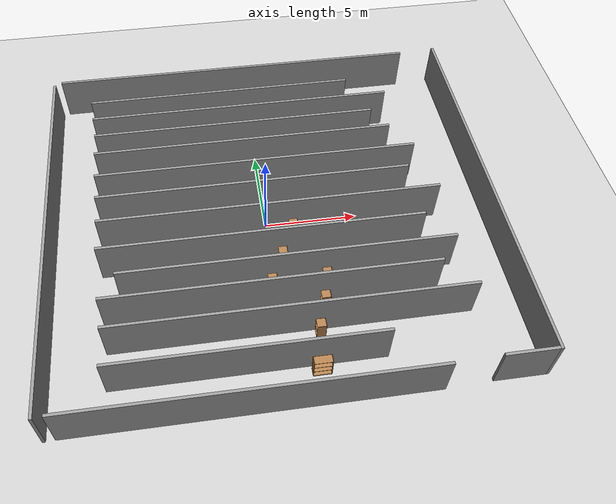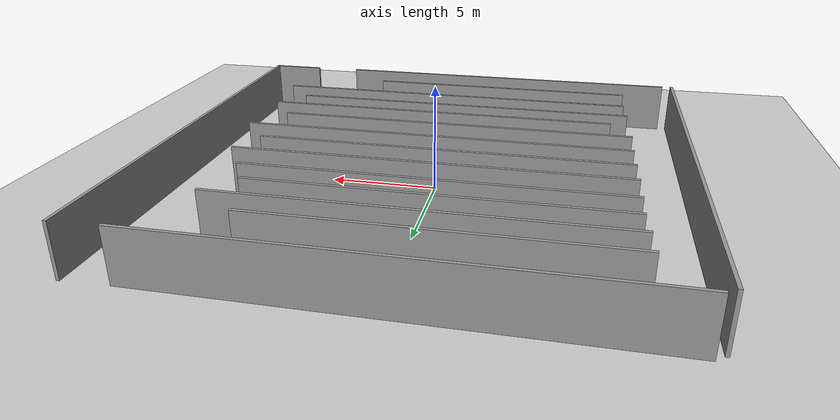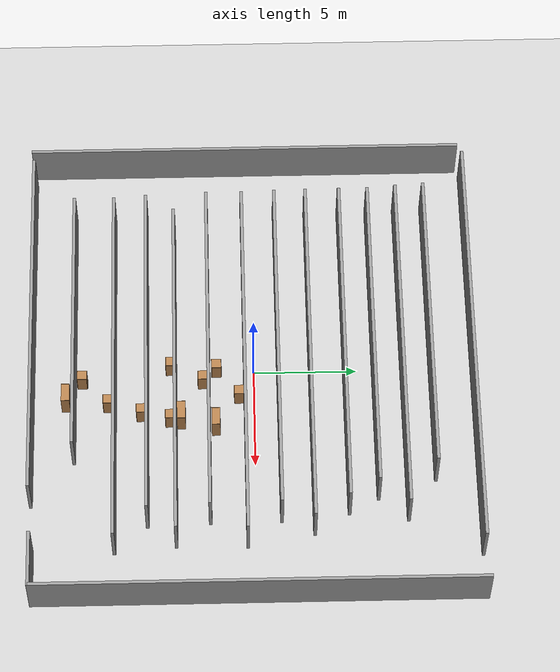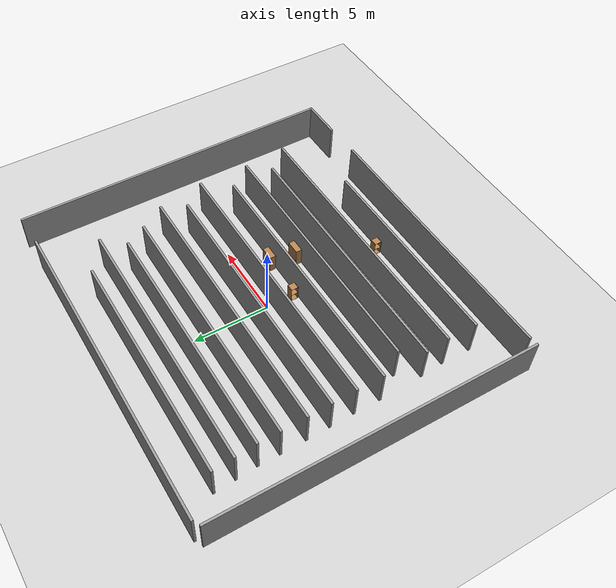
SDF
<sdf version="1.6">
 <world name="default">
  <model name="ground_plane">
   <static>1</static>
   <link name="link">
    <collision name="collision">
     <geometry><plane><normal>0 0 1</normal><size>100 100</size></plane></geometry>
     <surface><friction><ode><mu>100</mu><mu2>50</mu2></ode></friction></surface>
    </collision>
    <visual name="visual">
     <cast_shadows>0</cast_shadows>
     <geometry><plane><normal>0 0 1</normal><size>100 100</size></plane></geometry>
     <material>
      <script><uri>file://media/materials/scripts/gazebo.material</uri><name>Gazebo/Grey</name></script>
     </material>
    </visual>
   </link>
  </model>
  <model name="room16">
   <pose>0.320138 -0.0112 0 0 -0 0</pose>
   <link name="Wall_0">
    <collision name="Wall_0_Collision">
     <geometry><box><size>21 0.15 2.5</size></box></geometry>
     <pose>0 0 1.25 0 -0 0</pose>
    </collision>
    <visual name="Wall_0_Visual">
     <pose>0 0 1.25 0 -0 0</pose>
     <geometry><box><size>21 0.15 2.5</size></box></geometry>
     <material>
      <script><uri>file://media/materials/scripts/gazebo.material</uri><name>Gazebo/Grey</name></script>
      <ambient>1 1 1 1</ambient>
     </material>
     <meta><layer>0</layer></meta>
    </visual>
    <pose>-0.858692 10.6507 0 0 -0 0</pose>
   </link>
   <link name="Wall_11">
    <collision name="Wall_11_Collision">
     <geometry><box><size>17.25 0.15 2.5</size></box></geometry>
     <pose>0 0 1.25 0 -0 0</pose>
    </collision>
    <visual name="Wall_11_Visual">
     <pose>0 0 1.25 0 -0 0</pose>
     <geometry><box><size>17.25 0.15 2.5</size></box></geometry>
     <material>
      <script><uri>file://media/materials/scripts/gazebo.material</uri><name>Gazebo/Grey</name></script>
      <ambient>1 1 1 1</ambient>
     </material>
     <meta><layer>0</layer></meta>
    </visual>
    <pose>-0.822582 7.21897 0 0 -0 0</pose>
   </link>
   <link name="Wall_13">
    <collision name="Wall_13_Collision">
     <geometry><box><size>16 0.15 2.5</size></box></geometry>
     <pose>0 0 1.25 0 -0 0</pose>
    </collision>
    <visual name="Wall_13_Visual">
     <pose>0 0 1.25 0 -0 0</pose>
     <geometry><box><size>16 0.15 2.5</size></box></geometry>
     <material>
      <script><uri>file://media/materials/scripts/gazebo.material</uri><name>Gazebo/Grey</name></script>
      <ambient>1 1 1 1</ambient>
     </material>
     <meta><layer>0</layer></meta>
    </visual>
    <pose>-1.33193 5.83113 0 0 -0 0</pose>
   </link>
   <link name="Wall_16">
    <collision name="Wall_16_Collision">
     <geometry><box><size>16.75 0.15 2.5</size></box></geometry>
     <pose>0 0 1.25 0 -0 0</pose>
    </collision>
    <visual name="Wall_16_Visual">
     <pose>0 0 1.25 0 -0 0</pose>
     <geometry><box><size>16.75 0.15 2.5</size></box></geometry>
     <material>
      <script><uri>file://media/materials/scripts/gazebo.material</uri><name>Gazebo/Grey</name></script>
      <ambient>1 1 1 1</ambient>
     </material>
     <meta><layer>0</layer></meta>
    </visual>
    <pose>-0.956929 4.42016 0 0 -0 0</pose>
   </link>
   <link name="Wall_18">
    <collision name="Wall_18_Collision">
     <geometry><box><size>17.75 0.15 2.5</size></box></geometry>
     <pose>0 0 1.25 0 -0 0</pose>
    </collision>
    <visual name="Wall_18_Visual">
     <pose>0 0 1.25 0 -0 0</pose>
     <geometry><box><size>17.75 0.15 2.5</size></box></geometry>
     <material>
      <script><uri>file://media/materials/scripts/gazebo.material</uri><name>Gazebo/Grey</name></script>
      <ambient>1 1 1 1</ambient>
     </material>
     <meta><layer>0</layer></meta>
    </visual>
    <pose>-0.433798 2.75476 0 0 -0 0</pose>
   </link>
   <link name="Wall_2">
    <collision name="Wall_2_Collision">
     <geometry><box><size>21.25 0.15 2.5</size></box></geometry>
     <pose>0 0 1.25 0 -0 0</pose>
    </collision>
    <visual name="Wall_2_Visual">
     <pose>0 0 1.25 0 -0 0</pose>
     <geometry><box><size>21.25 0.15 2.5</size></box></geometry>
     <material>
      <script><uri>file://media/materials/scripts/gazebo.material</uri><name>Gazebo/Grey</name></script>
      <ambient>1 1 1 1</ambient>
     </material>
     <meta><layer>0</layer></meta>
    </visual>
    <pose>-11.755 -0.18527 0 0 -0 -1.5708</pose>
   </link>
   <link name="Wall_20">
    <collision name="Wall_20_Collision">
     <geometry><box><size>17 0.15 2.5</size></box></geometry>
     <pose>0 0 1.25 0 -0 0</pose>
    </collision>
    <visual name="Wall_20_Visual">
     <pose>0 0 1.25 0 -0 0</pose>
     <geometry><box><size>17 0.15 2.5</size></box></geometry>
     <material>
      <script><uri>file://media/materials/scripts/gazebo.material</uri><name>Gazebo/Grey</name></script>
      <ambient>1 1 1 1</ambient>
     </material>
     <meta><layer>0</layer></meta>
    </visual>
    <pose>-0.762537 1.20501 0 0 -0 0</pose>
   </link>
   <link name="Wall_22">
    <collision name="Wall_22_Collision">
     <geometry><box><size>18.25 0.15 2.5</size></box></geometry>
     <pose>0 0 1.25 0 -0 0</pose>
    </collision>
    <visual name="Wall_22_Visual">
     <pose>0 0 1.25 0 -0 0</pose>
     <geometry><box><size>18.25 0.15 2.5</size></box></geometry>
     <material>
      <script><uri>file://media/materials/scripts/gazebo.material</uri><name>Gazebo/Grey</name></script>
      <ambient>1 1 1 1</ambient>
     </material>
     <meta><layer>0</layer></meta>
    </visual>
    <pose>-0.091276 -0.414133 0 0 -0 0</pose>
   </link>
   <link name="Wall_25">
    <collision name="Wall_25_Collision">
     <geometry><box><size>17 0.15 2.5</size></box></geometry>
     <pose>0 0 1.25 0 -0 0</pose>
    </collision>
    <visual name="Wall_25_Visual">
     <pose>0 0 1.25 0 -0 0</pose>
     <geometry><box><size>17 0.15 2.5</size></box></geometry>
     <material>
      <script><uri>file://media/materials/scripts/gazebo.material</uri><name>Gazebo/Grey</name></script>
      <ambient>1 1 1 1</ambient>
     </material>
     <meta><layer>0</layer></meta>
    </visual>
    <pose>-0.716276 -2.17206 0 0 -0 0</pose>
   </link>
   <link name="Wall_27">
    <collision name="Wall_27_Collision">
     <geometry><box><size>17.25 0.15 2.5</size></box></geometry>
     <pose>0 0 1.25 0 -0 0</pose>
    </collision>
    <visual name="Wall_27_Visual">
     <pose>0 0 1.25 0 -0 0</pose>
     <geometry><box><size>17.25 0.15 2.5</size></box></geometry>
     <material>
      <script><uri>file://media/materials/scripts/gazebo.material</uri><name>Gazebo/Grey</name></script>
      <ambient>1 1 1 1</ambient>
     </material>
     <meta><layer>0</layer></meta>
    </visual>
    <pose>0.357079 -3.7912 0 0 -0 0</pose>
   </link>
   <link name="Wall_29">
    <collision name="Wall_29_Collision">
     <geometry><box><size>17 0.15 2.5</size></box></geometry>
     <pose>0 0 1.25 0 -0 0</pose>
    </collision>
    <visual name="Wall_29_Visual">
     <pose>0 0 1.25 0 -0 0</pose>
     <geometry><box><size>17 0.15 2.5</size></box></geometry>
     <material>
      <script><uri>file://media/materials/scripts/gazebo.material</uri><name>Gazebo/Grey</name></script>
      <ambient>1 1 1 1</ambient>
     </material>
     <meta><layer>0</layer></meta>
    </visual>
    <pose>-0.600623 -5.15591 0 0 -0 0</pose>
   </link>
   <link name="Wall_31">
    <collision name="Wall_31_Collision">
     <geometry><box><size>18.25 0.15 2.5</size></box></geometry>
     <pose>0 0 1.25 0 -0 0</pose>
    </collision>
    <visual name="Wall_31_Visual">
     <pose>0 0 1.25 0 -0 0</pose>
     <geometry><box><size>18.25 0.15 2.5</size></box></geometry>
     <material>
      <script><uri>file://media/materials/scripts/gazebo.material</uri><name>Gazebo/Grey</name></script>
      <ambient>1 1 1 1</ambient>
     </material>
     <meta><layer>0</layer></meta>
    </visual>
    <pose>0.14003 -6.72879 0 0 -0 0</pose>
   </link>
   <link name="Wall_33">
    <collision name="Wall_33_Collision">
     <geometry><box><size>13.5 0.15 2.5</size></box></geometry>
     <pose>0 0 1.25 0 -0 0</pose>
    </collision>
    <visual name="Wall_33_Visual">
     <pose>0 0 1.25 0 -0 0</pose>
     <geometry><box><size>13.5 0.15 2.5</size></box></geometry>
     <material>
      <script><uri>file://media/materials/scripts/gazebo.material</uri><name>Gazebo/Grey</name></script>
      <ambient>1 1 1 1</ambient>
     </material>
     <meta><layer>0</layer></meta>
    </visual>
    <pose>-2.2581 -8.67176 0 0 -0 0</pose>
   </link>
   <link name="Wall_4">
    <collision name="Wall_4_Collision">
     <geometry><box><size>18 0.15 2.5</size></box></geometry>
     <pose>0 0 1.25 0 -0 0</pose>
    </collision>
    <visual name="Wall_4_Visual">
     <pose>0 0 1.25 0 -0 0</pose>
     <geometry><box><size>18 0.15 2.5</size></box></geometry>
     <material>
      <script><uri>file://media/materials/scripts/gazebo.material</uri><name>Gazebo/Grey</name></script>
      <ambient>1 1 1 1</ambient>
     </material>
     <meta><layer>0</layer></meta>
    </visual>
    <pose>-2.25177 -10.7073 0 0 -0 0</pose>
   </link>
   <link name="Wall_6">
    <collision name="Wall_6_Collision">
     <geometry><box><size>2.75 0.15 2.5</size></box></geometry>
     <pose>0 0 1.25 0 -0 0</pose>
    </collision>
    <visual name="Wall_6_Visual">
     <pose>0 0 1.25 0 -0 0</pose>
     <geometry><box><size>2.75 0.15 2.5</size></box></geometry>
     <material>
      <script><uri>file://media/materials/scripts/gazebo.material</uri><name>Gazebo/Grey</name></script>
      <ambient>1 1 1 1</ambient>
     </material>
     <meta><layer>0</layer></meta>
    </visual>
    <pose>10.455 -10.6147 0 0 -0 0</pose>
   </link>
   <link name="Wall_7">
    <collision name="Wall_7_Collision">
     <geometry><box><size>21.5 0.15 2.5</size></box></geometry>
     <pose>0 0 1.25 0 -0 0</pose>
    </collision>
    <visual name="Wall_7_Visual">
     <pose>0 0 1.25 0 -0 0</pose>
     <geometry><box><size>21.5 0.15 2.5</size></box></geometry>
     <material>
      <script><uri>file://media/materials/scripts/gazebo.material</uri><name>Gazebo/Grey</name></script>
      <ambient>1 1 1 1</ambient>
     </material>
     <meta><layer>0</layer></meta>
    </visual>
    <pose>11.755 0.060269 0 0 -0 1.5708</pose>
   </link>
   <link name="Wall_9">
    <collision name="Wall_9_Collision">
     <geometry><box><size>15.25 0.15 2.5</size></box></geometry>
     <pose>0 0 1.25 0 -0 0</pose>
    </collision>
    <visual name="Wall_9_Visual">
     <pose>0 0 1.25 0 -0 0</pose>
     <geometry><box><size>15.25 0.15 2.5</size></box></geometry>
     <material>
      <script><uri>file://media/materials/scripts/gazebo.material</uri><name>Gazebo/Grey</name></script>
      <ambient>1 1 1 1</ambient>
     </material>
     <meta><layer>0</layer></meta>
    </visual>
    <pose>-1.9151 8.6068 0 0 -0 0</pose>
   </link>
   <static>1</static>
  </model>
  <model name="cabinet_21">
   <static>1</static>
   <link name="cabinet_bottom_plate">
    <inertial>
     <pose>0 0 -1 0 -0 0</pose>
     <inertia><ixx>2.05</ixx><ixy>0</ixy><ixz>0</ixz><iyy>2.05</iyy><iyz>0</iyz><izz>2.05</izz></inertia>
     <mass>25</mass>
    </inertial>
    <collision name="cabinet_bottom_plate_geom">
     <pose>0 0 0.01 0 -0 0</pose>
     <geometry><box><size>0.45 0.45 0.02</size></box></geometry>
    </collision>
    <visual name="cabinet_bottom_plate_geom_visual">
     <pose>0 0 0.01 0 -0 0</pose>
     <geometry><box><size>0.45 0.45 0.02</size></box></geometry>
     <material>
      <script><uri>file://media/materials/scripts/gazebo.material</uri><name>Gazebo/Wood</name></script>
     </material>
    </visual>
    <collision name="cabinet_bottom_plate_geom_cabinet_back_plate">
     <pose>0.235 0 0.51 0 -0 0</pose>
     <geometry><box><size>0.02 0.45 1.02</size></box></geometry>
    </collision>
    <visual name="cabinet_bottom_plate_geom_cabinet_back_plate_visual">
     <pose>0.235 0 0.51 0 -0 0</pose>
     <geometry><box><size>0.02 0.45 1.02</size></box></geometry>
     <material>
      <script><uri>file://media/materials/scripts/gazebo.material</uri><name>Gazebo/Wood</name></script>
     </material>
    </visual>
    <collision name="cabinet_bottom_plate_geom_cabinet_left_plate">
     <pose>0 0.235 0.51 0 -0 0</pose>
     <geometry><box><size>0.45 0.02 1.02</size></box></geometry>
    </collision>
    <visual name="cabinet_bottom_plate_geom_cabinet_left_plate_visual">
     <pose>0 0.235 0.51 0 -0 0</pose>
     <geometry><box><size>0.45 0.02 1.02</size></box></geometry>
     <material>
      <script><uri>file://media/materials/scripts/gazebo.material</uri><name>Gazebo/Wood</name></script>
     </material>
    </visual>
    <collision name="cabinet_bottom_plate_geom_cabinet_middle_plate">
     <pose>0 0 0.51 0 -0 0</pose>
     <geometry><box><size>0.45 0.45 0.02</size></box></geometry>
    </collision>
    <visual name="cabinet_bottom_plate_geom_cabinet_middle_plate_visual">
     <pose>0 0 0.51 0 -0 0</pose>
     <geometry><box><size>0.45 0.45 0.02</size></box></geometry>
     <material>
      <script><uri>file://media/materials/scripts/gazebo.material</uri><name>Gazebo/Wood</name></script>
     </material>
    </visual>
    <collision name="cabinet_bottom_plate_geom_cabinet_right_plate">
     <pose>0 -0.235 0.51 0 -0 0</pose>
     <geometry><box><size>0.45 0.02 1.02</size></box></geometry>
    </collision>
    <visual name="cabinet_bottom_plate_geom_cabinet_right_plate_visual">
     <pose>0 -0.235 0.51 0 -0 0</pose>
     <geometry><box><size>0.45 0.02 1.02</size></box></geometry>
     <material>
      <script><uri>file://media/materials/scripts/gazebo.material</uri><name>Gazebo/Wood</name></script>
     </material>
    </visual>
    <collision name="cabinet_bottom_plate_geom_cabinet_top_plate">
     <pose>0 0 1.01 0 -0 0</pose>
     <geometry><box><size>0.45 0.45 0.02</size></box></geometry>
    </collision>
    <visual name="cabinet_bottom_plate_geom_cabinet_top_plate_visual">
     <pose>0 0 1.01 0 -0 0</pose>
     <geometry><box><size>0.45 0.45 0.02</size></box></geometry>
     <material>
      <script><uri>file://media/materials/scripts/gazebo.material</uri><name>Gazebo/Wood</name></script>
     </material>
    </visual>
   </link>
   <pose>-0.043674 -1.79818 0 0 -0 0</pose>
  </model>
  <model name="cabinet_22">
   <static>1</static>
   <link name="cabinet_bottom_plate">
    <inertial>
     <pose>0 0 -1 0 -0 0</pose>
     <inertia><ixx>2.05</ixx><ixy>0</ixy><ixz>0</ixz><iyy>2.05</iyy><iyz>0</iyz><izz>2.05</izz></inertia>
     <mass>25</mass>
    </inertial>
    <collision name="cabinet_bottom_plate_geom">
     <pose>0 0 0.01 0 -0 0</pose>
     <geometry><box><size>0.45 0.45 0.02</size></box></geometry>
    </collision>
    <visual name="cabinet_bottom_plate_geom_visual">
     <pose>0 0 0.01 0 -0 0</pose>
     <geometry><box><size>0.45 0.45 0.02</size></box></geometry>
     <material>
      <script><uri>file://media/materials/scripts/gazebo.material</uri><name>Gazebo/Wood</name></script>
     </material>
    </visual>
    <collision name="cabinet_bottom_plate_geom_cabinet_back_plate">
     <pose>0.235 0 0.51 0 -0 0</pose>
     <geometry><box><size>0.02 0.45 1.02</size></box></geometry>
    </collision>
    <visual name="cabinet_bottom_plate_geom_cabinet_back_plate_visual">
     <pose>0.235 0 0.51 0 -0 0</pose>
     <geometry><box><size>0.02 0.45 1.02</size></box></geometry>
     <material>
      <script><uri>file://media/materials/scripts/gazebo.material</uri><name>Gazebo/Wood</name></script>
     </material>
    </visual>
    <collision name="cabinet_bottom_plate_geom_cabinet_left_plate">
     <pose>0 0.235 0.51 0 -0 0</pose>
     <geometry><box><size>0.45 0.02 1.02</size></box></geometry>
    </collision>
    <visual name="cabinet_bottom_plate_geom_cabinet_left_plate_visual">
     <pose>0 0.235 0.51 0 -0 0</pose>
     <geometry><box><size>0.45 0.02 1.02</size></box></geometry>
     <material>
      <script><uri>file://media/materials/scripts/gazebo.material</uri><name>Gazebo/Wood</name></script>
     </material>
    </visual>
    <collision name="cabinet_bottom_plate_geom_cabinet_middle_plate">
     <pose>0 0 0.51 0 -0 0</pose>
     <geometry><box><size>0.45 0.45 0.02</size></box></geometry>
    </collision>
    <visual name="cabinet_bottom_plate_geom_cabinet_middle_plate_visual">
     <pose>0 0 0.51 0 -0 0</pose>
     <geometry><box><size>0.45 0.45 0.02</size></box></geometry>
     <material>
      <script><uri>file://media/materials/scripts/gazebo.material</uri><name>Gazebo/Wood</name></script>
     </material>
    </visual>
    <collision name="cabinet_bottom_plate_geom_cabinet_right_plate">
     <pose>0 -0.235 0.51 0 -0 0</pose>
     <geometry><box><size>0.45 0.02 1.02</size></box></geometry>
    </collision>
    <visual name="cabinet_bottom_plate_geom_cabinet_right_plate_visual">
     <pose>0 -0.235 0.51 0 -0 0</pose>
     <geometry><box><size>0.45 0.02 1.02</size></box></geometry>
     <material>
      <script><uri>file://media/materials/scripts/gazebo.material</uri><name>Gazebo/Wood</name></script>
     </material>
    </visual>
    <collision name="cabinet_bottom_plate_geom_cabinet_top_plate">
     <pose>0 0 1.01 0 -0 0</pose>
     <geometry><box><size>0.45 0.45 0.02</size></box></geometry>
    </collision>
    <visual name="cabinet_bottom_plate_geom_cabinet_top_plate_visual">
     <pose>0 0 1.01 0 -0 0</pose>
     <geometry><box><size>0.45 0.45 0.02</size></box></geometry>
     <material>
      <script><uri>file://media/materials/scripts/gazebo.material</uri><name>Gazebo/Wood</name></script>
     </material>
    </visual>
   </link>
   <pose>1.39877 -0.713935 0 0 -0 0</pose>
  </model>
  <model name="bookshelf_24">
   <static>1</static>
   <link name="link">
    <inertial><mass>1</mass></inertial>
    <collision name="back">
     <pose>0 0.005 0.6 0 -0 0</pose>
     <geometry><box><size>0.9 0.01 1.2</size></box></geometry>
    </collision>
    <visual name="visual1">
     <pose>0 0.005 0.6 0 -0 0</pose>
     <geometry><box><size>0.9 0.01 1.2</size></box></geometry>
     <material>
      <script><uri>file://media/materials/scripts/gazebo.material</uri><name>Gazebo/Wood</name></script>
     </material>
    </visual>
    <collision name="left_side">
     <pose>0.45 -0.195 0.6 0 -0 0</pose>
     <geometry><box><size>0.02 0.4 1.2</size></box></geometry>
    </collision>
    <visual name="visual2">
     <pose>0.45 -0.195 0.6 0 -0 0</pose>
     <geometry><box><size>0.02 0.4 1.2</size></box></geometry>
     <material>
      <script><uri>file://media/materials/scripts/gazebo.material</uri><name>Gazebo/Wood</name></script>
     </material>
    </visual>
    <collision name="right_side">
     <pose>-0.45 -0.195 0.6 0 -0 0</pose>
     <geometry><box><size>0.02 0.4 1.2</size></box></geometry>
    </collision>
    <visual name="visual3">
     <pose>-0.45 -0.195 0.6 0 -0 0</pose>
     <geometry><box><size>0.02 0.4 1.2</size></box></geometry>
     <material>
      <script><uri>file://media/materials/scripts/gazebo.material</uri><name>Gazebo/Wood</name></script>
     </material>
    </visual>
    <collision name="bottom">
     <pose>0 -0.195 0.03 0 -0 0</pose>
     <geometry><box><size>0.88 0.4 0.06</size></box></geometry>
    </collision>
    <visual name="visual4">
     <pose>0 -0.195 0.03 0 -0 0</pose>
     <geometry><box><size>0.88 0.4 0.06</size></box></geometry>
     <material>
      <script><uri>file://media/materials/scripts/gazebo.material</uri><name>Gazebo/Wood</name></script>
     </material>
    </visual>
    <collision name="top">
     <pose>0 -0.195 1.19 0 -0 0</pose>
     <geometry><box><size>0.88 0.4 0.02</size></box></geometry>
    </collision>
    <visual name="visual5">
     <pose>0 -0.195 1.19 0 -0 0</pose>
     <geometry><box><size>0.88 0.4 0.02</size></box></geometry>
     <material>
      <script><uri>file://media/materials/scripts/gazebo.material</uri><name>Gazebo/Wood</name></script>
     </material>
    </visual>
    <collision name="low_shelf">
     <pose>0 -0.195 0.43 0 -0 0</pose>
     <geometry><box><size>0.88 0.4 0.02</size></box></geometry>
    </collision>
    <visual name="visual6">
     <pose>0 -0.195 0.43 0 -0 0</pose>
     <geometry><box><size>0.88 0.4 0.02</size></box></geometry>
     <material>
      <script><uri>file://media/materials/scripts/gazebo.material</uri><name>Gazebo/Wood</name></script>
     </material>
    </visual>
    <collision name="high_shelf">
     <pose>0 -0.195 0.8 0 -0 0</pose>
     <geometry><box><size>0.88 0.4 0.02</size></box></geometry>
    </collision>
    <visual name="visual7">
     <pose>0 -0.195 0.8 0 -0 0</pose>
     <geometry><box><size>0.88 0.4 0.02</size></box></geometry>
     <material>
      <script><uri>file://media/materials/scripts/gazebo.material</uri><name>Gazebo/Wood</name></script>
     </material>
    </visual>
   </link>
   <pose>2.90995 -1.65645 0 0 -0 0</pose>
  </model>
  <model name="cabinet_27">
   <static>1</static>
   <link name="cabinet_bottom_plate">
    <inertial>
     <pose>0 0 -1 0 -0 0</pose>
     <inertia><ixx>2.05</ixx><ixy>0</ixy><ixz>0</ixz><iyy>2.05</iyy><iyz>0</iyz><izz>2.05</izz></inertia>
     <mass>25</mass>
    </inertial>
    <collision name="cabinet_bottom_plate_geom">
     <pose>0 0 0.01 0 -0 0</pose>
     <geometry><box><size>0.45 0.45 0.02</size></box></geometry>
    </collision>
    <visual name="cabinet_bottom_plate_geom_visual">
     <pose>0 0 0.01 0 -0 0</pose>
     <geometry><box><size>0.45 0.45 0.02</size></box></geometry>
     <material>
      <script><uri>file://media/materials/scripts/gazebo.material</uri><name>Gazebo/Wood</name></script>
     </material>
    </visual>
    <collision name="cabinet_bottom_plate_geom_cabinet_back_plate">
     <pose>0.235 0 0.51 0 -0 0</pose>
     <geometry><box><size>0.02 0.45 1.02</size></box></geometry>
    </collision>
    <visual name="cabinet_bottom_plate_geom_cabinet_back_plate_visual">
     <pose>0.235 0 0.51 0 -0 0</pose>
     <geometry><box><size>0.02 0.45 1.02</size></box></geometry>
     <material>
      <script><uri>file://media/materials/scripts/gazebo.material</uri><name>Gazebo/Wood</name></script>
     </material>
    </visual>
    <collision name="cabinet_bottom_plate_geom_cabinet_left_plate">
     <pose>0 0.235 0.51 0 -0 0</pose>
     <geometry><box><size>0.45 0.02 1.02</size></box></geometry>
    </collision>
    <visual name="cabinet_bottom_plate_geom_cabinet_left_plate_visual">
     <pose>0 0.235 0.51 0 -0 0</pose>
     <geometry><box><size>0.45 0.02 1.02</size></box></geometry>
     <material>
      <script><uri>file://media/materials/scripts/gazebo.material</uri><name>Gazebo/Wood</name></script>
     </material>
    </visual>
    <collision name="cabinet_bottom_plate_geom_cabinet_middle_plate">
     <pose>0 0 0.51 0 -0 0</pose>
     <geometry><box><size>0.45 0.45 0.02</size></box></geometry>
    </collision>
    <visual name="cabinet_bottom_plate_geom_cabinet_middle_plate_visual">
     <pose>0 0 0.51 0 -0 0</pose>
     <geometry><box><size>0.45 0.45 0.02</size></box></geometry>
     <material>
      <script><uri>file://media/materials/scripts/gazebo.material</uri><name>Gazebo/Wood</name></script>
     </material>
    </visual>
    <collision name="cabinet_bottom_plate_geom_cabinet_right_plate">
     <pose>0 -0.235 0.51 0 -0 0</pose>
     <geometry><box><size>0.45 0.02 1.02</size></box></geometry>
    </collision>
    <visual name="cabinet_bottom_plate_geom_cabinet_right_plate_visual">
     <pose>0 -0.235 0.51 0 -0 0</pose>
     <geometry><box><size>0.45 0.02 1.02</size></box></geometry>
     <material>
      <script><uri>file://media/materials/scripts/gazebo.material</uri><name>Gazebo/Wood</name></script>
     </material>
    </visual>
    <collision name="cabinet_bottom_plate_geom_cabinet_top_plate">
     <pose>0 0 1.01 0 -0 0</pose>
     <geometry><box><size>0.45 0.45 0.02</size></box></geometry>
    </collision>
    <visual name="cabinet_bottom_plate_geom_cabinet_top_plate_visual">
     <pose>0 0 1.01 0 -0 0</pose>
     <geometry><box><size>0.45 0.45 0.02</size></box></geometry>
     <material>
      <script><uri>file://media/materials/scripts/gazebo.material</uri><name>Gazebo/Wood</name></script>
     </material>
    </visual>
   </link>
   <pose>0.573632 -2.46662 0 0 -0 0</pose>
  </model>
  <model name="bookshelf_27">
   <static>1</static>
   <link name="link">
    <inertial><mass>1</mass></inertial>
    <collision name="back">
     <pose>0 0.005 0.6 0 -0 0</pose>
     <geometry><box><size>0.9 0.01 1.2</size></box></geometry>
    </collision>
    <visual name="visual1">
     <pose>0 0.005 0.6 0 -0 0</pose>
     <geometry><box><size>0.9 0.01 1.2</size></box></geometry>
     <material>
      <script><uri>file://media/materials/scripts/gazebo.material</uri><name>Gazebo/Wood</name></script>
     </material>
    </visual>
    <collision name="left_side">
     <pose>0.45 -0.195 0.6 0 -0 0</pose>
     <geometry><box><size>0.02 0.4 1.2</size></box></geometry>
    </collision>
    <visual name="visual2">
     <pose>0.45 -0.195 0.6 0 -0 0</pose>
     <geometry><box><size>0.02 0.4 1.2</size></box></geometry>
     <material>
      <script><uri>file://media/materials/scripts/gazebo.material</uri><name>Gazebo/Wood</name></script>
     </material>
    </visual>
    <collision name="right_side">
     <pose>-0.45 -0.195 0.6 0 -0 0</pose>
     <geometry><box><size>0.02 0.4 1.2</size></box></geometry>
    </collision>
    <visual name="visual3">
     <pose>-0.45 -0.195 0.6 0 -0 0</pose>
     <geometry><box><size>0.02 0.4 1.2</size></box></geometry>
     <material>
      <script><uri>file://media/materials/scripts/gazebo.material</uri><name>Gazebo/Wood</name></script>
     </material>
    </visual>
    <collision name="bottom">
     <pose>0 -0.195 0.03 0 -0 0</pose>
     <geometry><box><size>0.88 0.4 0.06</size></box></geometry>
    </collision>
    <visual name="visual4">
     <pose>0 -0.195 0.03 0 -0 0</pose>
     <geometry><box><size>0.88 0.4 0.06</size></box></geometry>
     <material>
      <script><uri>file://media/materials/scripts/gazebo.material</uri><name>Gazebo/Wood</name></script>
     </material>
    </visual>
    <collision name="top">
     <pose>0 -0.195 1.19 0 -0 0</pose>
     <geometry><box><size>0.88 0.4 0.02</size></box></geometry>
    </collision>
    <visual name="visual5">
     <pose>0 -0.195 1.19 0 -0 0</pose>
     <geometry><box><size>0.88 0.4 0.02</size></box></geometry>
     <material>
      <script><uri>file://media/materials/scripts/gazebo.material</uri><name>Gazebo/Wood</name></script>
     </material>
    </visual>
    <collision name="low_shelf">
     <pose>0 -0.195 0.43 0 -0 0</pose>
     <geometry><box><size>0.88 0.4 0.02</size></box></geometry>
    </collision>
    <visual name="visual6">
     <pose>0 -0.195 0.43 0 -0 0</pose>
     <geometry><box><size>0.88 0.4 0.02</size></box></geometry>
     <material>
      <script><uri>file://media/materials/scripts/gazebo.material</uri><name>Gazebo/Wood</name></script>
     </material>
    </visual>
    <collision name="high_shelf">
     <pose>0 -0.195 0.8 0 -0 0</pose>
     <geometry><box><size>0.88 0.4 0.02</size></box></geometry>
    </collision>
    <visual name="visual7">
     <pose>0 -0.195 0.8 0 -0 0</pose>
     <geometry><box><size>0.88 0.4 0.02</size></box></geometry>
     <material>
      <script><uri>file://media/materials/scripts/gazebo.material</uri><name>Gazebo/Wood</name></script>
     </material>
    </visual>
   </link>
   <pose>2.53301 -3.32443 0 0 -0 0</pose>
  </model>
  <model name="cabinet_29">
   <static>1</static>
   <link name="cabinet_bottom_plate">
    <inertial>
     <pose>0 0 -1 0 -0 0</pose>
     <inertia><ixx>2.05</ixx><ixy>0</ixy><ixz>0</ixz><iyy>2.05</iyy><iyz>0</iyz><izz>2.05</izz></inertia>
     <mass>25</mass>
    </inertial>
    <collision name="cabinet_bottom_plate_geom">
     <pose>0 0 0.01 0 -0 0</pose>
     <geometry><box><size>0.45 0.45 0.02</size></box></geometry>
    </collision>
    <visual name="cabinet_bottom_plate_geom_visual">
     <pose>0 0 0.01 0 -0 0</pose>
     <geometry><box><size>0.45 0.45 0.02</size></box></geometry>
     <material>
      <script><uri>file://media/materials/scripts/gazebo.material</uri><name>Gazebo/Wood</name></script>
     </material>
    </visual>
    <collision name="cabinet_bottom_plate_geom_cabinet_back_plate">
     <pose>0.235 0 0.51 0 -0 0</pose>
     <geometry><box><size>0.02 0.45 1.02</size></box></geometry>
    </collision>
    <visual name="cabinet_bottom_plate_geom_cabinet_back_plate_visual">
     <pose>0.235 0 0.51 0 -0 0</pose>
     <geometry><box><size>0.02 0.45 1.02</size></box></geometry>
     <material>
      <script><uri>file://media/materials/scripts/gazebo.material</uri><name>Gazebo/Wood</name></script>
     </material>
    </visual>
    <collision name="cabinet_bottom_plate_geom_cabinet_left_plate">
     <pose>0 0.235 0.51 0 -0 0</pose>
     <geometry><box><size>0.45 0.02 1.02</size></box></geometry>
    </collision>
    <visual name="cabinet_bottom_plate_geom_cabinet_left_plate_visual">
     <pose>0 0.235 0.51 0 -0 0</pose>
     <geometry><box><size>0.45 0.02 1.02</size></box></geometry>
     <material>
      <script><uri>file://media/materials/scripts/gazebo.material</uri><name>Gazebo/Wood</name></script>
     </material>
    </visual>
    <collision name="cabinet_bottom_plate_geom_cabinet_middle_plate">
     <pose>0 0 0.51 0 -0 0</pose>
     <geometry><box><size>0.45 0.45 0.02</size></box></geometry>
    </collision>
    <visual name="cabinet_bottom_plate_geom_cabinet_middle_plate_visual">
     <pose>0 0 0.51 0 -0 0</pose>
     <geometry><box><size>0.45 0.45 0.02</size></box></geometry>
     <material>
      <script><uri>file://media/materials/scripts/gazebo.material</uri><name>Gazebo/Wood</name></script>
     </material>
    </visual>
    <collision name="cabinet_bottom_plate_geom_cabinet_right_plate">
     <pose>0 -0.235 0.51 0 -0 0</pose>
     <geometry><box><size>0.45 0.02 1.02</size></box></geometry>
    </collision>
    <visual name="cabinet_bottom_plate_geom_cabinet_right_plate_visual">
     <pose>0 -0.235 0.51 0 -0 0</pose>
     <geometry><box><size>0.45 0.02 1.02</size></box></geometry>
     <material>
      <script><uri>file://media/materials/scripts/gazebo.material</uri><name>Gazebo/Wood</name></script>
     </material>
    </visual>
    <collision name="cabinet_bottom_plate_geom_cabinet_top_plate">
     <pose>0 0 1.01 0 -0 0</pose>
     <geometry><box><size>0.45 0.45 0.02</size></box></geometry>
    </collision>
    <visual name="cabinet_bottom_plate_geom_cabinet_top_plate_visual">
     <pose>0 0 1.01 0 -0 0</pose>
     <geometry><box><size>0.45 0.45 0.02</size></box></geometry>
     <material>
      <script><uri>file://media/materials/scripts/gazebo.material</uri><name>Gazebo/Wood</name></script>
     </material>
    </visual>
   </link>
   <pose>-0.193374 -4.02035 0 0 -0 0</pose>
  </model>
  <model name="cabinet_30">
   <static>1</static>
   <link name="cabinet_bottom_plate">
    <inertial>
     <pose>0 0 -1 0 -0 0</pose>
     <inertia><ixx>2.05</ixx><ixy>0</ixy><ixz>0</ixz><iyy>2.05</iyy><iyz>0</iyz><izz>2.05</izz></inertia>
     <mass>25</mass>
    </inertial>
    <collision name="cabinet_bottom_plate_geom">
     <pose>0 0 0.01 0 -0 0</pose>
     <geometry><box><size>0.45 0.45 0.02</size></box></geometry>
    </collision>
    <visual name="cabinet_bottom_plate_geom_visual">
     <pose>0 0 0.01 0 -0 0</pose>
     <geometry><box><size>0.45 0.45 0.02</size></box></geometry>
     <material>
      <script><uri>file://media/materials/scripts/gazebo.material</uri><name>Gazebo/Wood</name></script>
     </material>
    </visual>
    <collision name="cabinet_bottom_plate_geom_cabinet_back_plate">
     <pose>0.235 0 0.51 0 -0 0</pose>
     <geometry><box><size>0.02 0.45 1.02</size></box></geometry>
    </collision>
    <visual name="cabinet_bottom_plate_geom_cabinet_back_plate_visual">
     <pose>0.235 0 0.51 0 -0 0</pose>
     <geometry><box><size>0.02 0.45 1.02</size></box></geometry>
     <material>
      <script><uri>file://media/materials/scripts/gazebo.material</uri><name>Gazebo/Wood</name></script>
     </material>
    </visual>
    <collision name="cabinet_bottom_plate_geom_cabinet_left_plate">
     <pose>0 0.235 0.51 0 -0 0</pose>
     <geometry><box><size>0.45 0.02 1.02</size></box></geometry>
    </collision>
    <visual name="cabinet_bottom_plate_geom_cabinet_left_plate_visual">
     <pose>0 0.235 0.51 0 -0 0</pose>
     <geometry><box><size>0.45 0.02 1.02</size></box></geometry>
     <material>
      <script><uri>file://media/materials/scripts/gazebo.material</uri><name>Gazebo/Wood</name></script>
     </material>
    </visual>
    <collision name="cabinet_bottom_plate_geom_cabinet_middle_plate">
     <pose>0 0 0.51 0 -0 0</pose>
     <geometry><box><size>0.45 0.45 0.02</size></box></geometry>
    </collision>
    <visual name="cabinet_bottom_plate_geom_cabinet_middle_plate_visual">
     <pose>0 0 0.51 0 -0 0</pose>
     <geometry><box><size>0.45 0.45 0.02</size></box></geometry>
     <material>
      <script><uri>file://media/materials/scripts/gazebo.material</uri><name>Gazebo/Wood</name></script>
     </material>
    </visual>
    <collision name="cabinet_bottom_plate_geom_cabinet_right_plate">
     <pose>0 -0.235 0.51 0 -0 0</pose>
     <geometry><box><size>0.45 0.02 1.02</size></box></geometry>
    </collision>
    <visual name="cabinet_bottom_plate_geom_cabinet_right_plate_visual">
     <pose>0 -0.235 0.51 0 -0 0</pose>
     <geometry><box><size>0.45 0.02 1.02</size></box></geometry>
     <material>
      <script><uri>file://media/materials/scripts/gazebo.material</uri><name>Gazebo/Wood</name></script>
     </material>
    </visual>
    <collision name="cabinet_bottom_plate_geom_cabinet_top_plate">
     <pose>0 0 1.01 0 -0 0</pose>
     <geometry><box><size>0.45 0.45 0.02</size></box></geometry>
    </collision>
    <visual name="cabinet_bottom_plate_geom_cabinet_top_plate_visual">
     <pose>0 0 1.01 0 -0 0</pose>
     <geometry><box><size>0.45 0.45 0.02</size></box></geometry>
     <material>
      <script><uri>file://media/materials/scripts/gazebo.material</uri><name>Gazebo/Wood</name></script>
     </material>
    </visual>
   </link>
   <pose>2.63563 -4.04717 0 0 -0 0</pose>
  </model>
  <model name="cabinet_31">
   <static>1</static>
   <link name="cabinet_bottom_plate">
    <inertial>
     <pose>0 0 -1 0 -0 0</pose>
     <inertia><ixx>2.05</ixx><ixy>0</ixy><ixz>0</ixz><iyy>2.05</iyy><iyz>0</iyz><izz>2.05</izz></inertia>
     <mass>25</mass>
    </inertial>
    <collision name="cabinet_bottom_plate_geom">
     <pose>0 0 0.01 0 -0 0</pose>
     <geometry><box><size>0.45 0.45 0.02</size></box></geometry>
    </collision>
    <visual name="cabinet_bottom_plate_geom_visual">
     <pose>0 0 0.01 0 -0 0</pose>
     <geometry><box><size>0.45 0.45 0.02</size></box></geometry>
     <material>
      <script><uri>file://media/materials/scripts/gazebo.material</uri><name>Gazebo/Wood</name></script>
     </material>
    </visual>
    <collision name="cabinet_bottom_plate_geom_cabinet_back_plate">
     <pose>0.235 0 0.51 0 -0 0</pose>
     <geometry><box><size>0.02 0.45 1.02</size></box></geometry>
    </collision>
    <visual name="cabinet_bottom_plate_geom_cabinet_back_plate_visual">
     <pose>0.235 0 0.51 0 -0 0</pose>
     <geometry><box><size>0.02 0.45 1.02</size></box></geometry>
     <material>
      <script><uri>file://media/materials/scripts/gazebo.material</uri><name>Gazebo/Wood</name></script>
     </material>
    </visual>
    <collision name="cabinet_bottom_plate_geom_cabinet_left_plate">
     <pose>0 0.235 0.51 0 -0 0</pose>
     <geometry><box><size>0.45 0.02 1.02</size></box></geometry>
    </collision>
    <visual name="cabinet_bottom_plate_geom_cabinet_left_plate_visual">
     <pose>0 0.235 0.51 0 -0 0</pose>
     <geometry><box><size>0.45 0.02 1.02</size></box></geometry>
     <material>
      <script><uri>file://media/materials/scripts/gazebo.material</uri><name>Gazebo/Wood</name></script>
     </material>
    </visual>
    <collision name="cabinet_bottom_plate_geom_cabinet_middle_plate">
     <pose>0 0 0.51 0 -0 0</pose>
     <geometry><box><size>0.45 0.45 0.02</size></box></geometry>
    </collision>
    <visual name="cabinet_bottom_plate_geom_cabinet_middle_plate_visual">
     <pose>0 0 0.51 0 -0 0</pose>
     <geometry><box><size>0.45 0.45 0.02</size></box></geometry>
     <material>
      <script><uri>file://media/materials/scripts/gazebo.material</uri><name>Gazebo/Wood</name></script>
     </material>
    </visual>
    <collision name="cabinet_bottom_plate_geom_cabinet_right_plate">
     <pose>0 -0.235 0.51 0 -0 0</pose>
     <geometry><box><size>0.45 0.02 1.02</size></box></geometry>
    </collision>
    <visual name="cabinet_bottom_plate_geom_cabinet_right_plate_visual">
     <pose>0 -0.235 0.51 0 -0 0</pose>
     <geometry><box><size>0.45 0.02 1.02</size></box></geometry>
     <material>
      <script><uri>file://media/materials/scripts/gazebo.material</uri><name>Gazebo/Wood</name></script>
     </material>
    </visual>
    <collision name="cabinet_bottom_plate_geom_cabinet_top_plate">
     <pose>0 0 1.01 0 -0 0</pose>
     <geometry><box><size>0.45 0.45 0.02</size></box></geometry>
    </collision>
    <visual name="cabinet_bottom_plate_geom_cabinet_top_plate_visual">
     <pose>0 0 1.01 0 -0 0</pose>
     <geometry><box><size>0.45 0.45 0.02</size></box></geometry>
     <material>
      <script><uri>file://media/materials/scripts/gazebo.material</uri><name>Gazebo/Wood</name></script>
     </material>
    </visual>
   </link>
   <pose>2.30393 -5.44455 0 0 -0 0</pose>
  </model>
  <model name="cabinet_34">
   <static>1</static>
   <link name="cabinet_bottom_plate">
    <inertial>
     <pose>0 0 -1 0 -0 0</pose>
     <inertia><ixx>2.05</ixx><ixy>0</ixy><ixz>0</ixz><iyy>2.05</iyy><iyz>0</iyz><izz>2.05</izz></inertia>
     <mass>25</mass>
    </inertial>
    <collision name="cabinet_bottom_plate_geom">
     <pose>0 0 0.01 0 -0 0</pose>
     <geometry><box><size>0.45 0.45 0.02</size></box></geometry>
    </collision>
    <visual name="cabinet_bottom_plate_geom_visual">
     <pose>0 0 0.01 0 -0 0</pose>
     <geometry><box><size>0.45 0.45 0.02</size></box></geometry>
     <material>
      <script><uri>file://media/materials/scripts/gazebo.material</uri><name>Gazebo/Wood</name></script>
     </material>
    </visual>
    <collision name="cabinet_bottom_plate_geom_cabinet_back_plate">
     <pose>0.235 0 0.51 0 -0 0</pose>
     <geometry><box><size>0.02 0.45 1.02</size></box></geometry>
    </collision>
    <visual name="cabinet_bottom_plate_geom_cabinet_back_plate_visual">
     <pose>0.235 0 0.51 0 -0 0</pose>
     <geometry><box><size>0.02 0.45 1.02</size></box></geometry>
     <material>
      <script><uri>file://media/materials/scripts/gazebo.material</uri><name>Gazebo/Wood</name></script>
     </material>
    </visual>
    <collision name="cabinet_bottom_plate_geom_cabinet_left_plate">
     <pose>0 0.235 0.51 0 -0 0</pose>
     <geometry><box><size>0.45 0.02 1.02</size></box></geometry>
    </collision>
    <visual name="cabinet_bottom_plate_geom_cabinet_left_plate_visual">
     <pose>0 0.235 0.51 0 -0 0</pose>
     <geometry><box><size>0.45 0.02 1.02</size></box></geometry>
     <material>
      <script><uri>file://media/materials/scripts/gazebo.material</uri><name>Gazebo/Wood</name></script>
     </material>
    </visual>
    <collision name="cabinet_bottom_plate_geom_cabinet_middle_plate">
     <pose>0 0 0.51 0 -0 0</pose>
     <geometry><box><size>0.45 0.45 0.02</size></box></geometry>
    </collision>
    <visual name="cabinet_bottom_plate_geom_cabinet_middle_plate_visual">
     <pose>0 0 0.51 0 -0 0</pose>
     <geometry><box><size>0.45 0.45 0.02</size></box></geometry>
     <material>
      <script><uri>file://media/materials/scripts/gazebo.material</uri><name>Gazebo/Wood</name></script>
     </material>
    </visual>
    <collision name="cabinet_bottom_plate_geom_cabinet_right_plate">
     <pose>0 -0.235 0.51 0 -0 0</pose>
     <geometry><box><size>0.45 0.02 1.02</size></box></geometry>
    </collision>
    <visual name="cabinet_bottom_plate_geom_cabinet_right_plate_visual">
     <pose>0 -0.235 0.51 0 -0 0</pose>
     <geometry><box><size>0.45 0.02 1.02</size></box></geometry>
     <material>
      <script><uri>file://media/materials/scripts/gazebo.material</uri><name>Gazebo/Wood</name></script>
     </material>
    </visual>
    <collision name="cabinet_bottom_plate_geom_cabinet_top_plate">
     <pose>0 0 1.01 0 -0 0</pose>
     <geometry><box><size>0.45 0.45 0.02</size></box></geometry>
    </collision>
    <visual name="cabinet_bottom_plate_geom_cabinet_top_plate_visual">
     <pose>0 0 1.01 0 -0 0</pose>
     <geometry><box><size>0.45 0.45 0.02</size></box></geometry>
     <material>
      <script><uri>file://media/materials/scripts/gazebo.material</uri><name>Gazebo/Wood</name></script>
     </material>
    </visual>
   </link>
   <pose>0.476518 -8.30906 0 0 -0 0</pose>
  </model>
  <model name="cabinet_35">
   <static>1</static>
   <link name="cabinet_bottom_plate">
    <inertial>
     <pose>0 0 -1 0 -0 0</pose>
     <inertia><ixx>2.05</ixx><ixy>0</ixy><ixz>0</ixz><iyy>2.05</iyy><iyz>0</iyz><izz>2.05</izz></inertia>
     <mass>25</mass>
    </inertial>
    <collision name="cabinet_bottom_plate_geom">
     <pose>0 0 0.01 0 -0 0</pose>
     <geometry><box><size>0.45 0.45 0.02</size></box></geometry>
    </collision>
    <visual name="cabinet_bottom_plate_geom_visual">
     <pose>0 0 0.01 0 -0 0</pose>
     <geometry><box><size>0.45 0.45 0.02</size></box></geometry>
     <material>
      <script><uri>file://media/materials/scripts/gazebo.material</uri><name>Gazebo/Wood</name></script>
     </material>
    </visual>
    <collision name="cabinet_bottom_plate_geom_cabinet_back_plate">
     <pose>0.235 0 0.51 0 -0 0</pose>
     <geometry><box><size>0.02 0.45 1.02</size></box></geometry>
    </collision>
    <visual name="cabinet_bottom_plate_geom_cabinet_back_plate_visual">
     <pose>0.235 0 0.51 0 -0 0</pose>
     <geometry><box><size>0.02 0.45 1.02</size></box></geometry>
     <material>
      <script><uri>file://media/materials/scripts/gazebo.material</uri><name>Gazebo/Wood</name></script>
     </material>
    </visual>
    <collision name="cabinet_bottom_plate_geom_cabinet_left_plate">
     <pose>0 0.235 0.51 0 -0 0</pose>
     <geometry><box><size>0.45 0.02 1.02</size></box></geometry>
    </collision>
    <visual name="cabinet_bottom_plate_geom_cabinet_left_plate_visual">
     <pose>0 0.235 0.51 0 -0 0</pose>
     <geometry><box><size>0.45 0.02 1.02</size></box></geometry>
     <material>
      <script><uri>file://media/materials/scripts/gazebo.material</uri><name>Gazebo/Wood</name></script>
     </material>
    </visual>
    <collision name="cabinet_bottom_plate_geom_cabinet_middle_plate">
     <pose>0 0 0.51 0 -0 0</pose>
     <geometry><box><size>0.45 0.45 0.02</size></box></geometry>
    </collision>
    <visual name="cabinet_bottom_plate_geom_cabinet_middle_plate_visual">
     <pose>0 0 0.51 0 -0 0</pose>
     <geometry><box><size>0.45 0.45 0.02</size></box></geometry>
     <material>
      <script><uri>file://media/materials/scripts/gazebo.material</uri><name>Gazebo/Wood</name></script>
     </material>
    </visual>
    <collision name="cabinet_bottom_plate_geom_cabinet_right_plate">
     <pose>0 -0.235 0.51 0 -0 0</pose>
     <geometry><box><size>0.45 0.02 1.02</size></box></geometry>
    </collision>
    <visual name="cabinet_bottom_plate_geom_cabinet_right_plate_visual">
     <pose>0 -0.235 0.51 0 -0 0</pose>
     <geometry><box><size>0.45 0.02 1.02</size></box></geometry>
     <material>
      <script><uri>file://media/materials/scripts/gazebo.material</uri><name>Gazebo/Wood</name></script>
     </material>
    </visual>
    <collision name="cabinet_bottom_plate_geom_cabinet_top_plate">
     <pose>0 0 1.01 0 -0 0</pose>
     <geometry><box><size>0.45 0.45 0.02</size></box></geometry>
    </collision>
    <visual name="cabinet_bottom_plate_geom_cabinet_top_plate_visual">
     <pose>0 0 1.01 0 -0 0</pose>
     <geometry><box><size>0.45 0.45 0.02</size></box></geometry>
     <material>
      <script><uri>file://media/materials/scripts/gazebo.material</uri><name>Gazebo/Wood</name></script>
     </material>
    </visual>
   </link>
   <pose>1.77906 -7.04764 0 0 -0 0</pose>
  </model>
  <model name="bookshelf_41">
   <static>1</static>
   <link name="link">
    <inertial><mass>1</mass></inertial>
    <collision name="back">
     <pose>0 0.005 0.6 0 -0 0</pose>
     <geometry><box><size>0.9 0.01 1.2</size></box></geometry>
    </collision>
    <visual name="visual1">
     <pose>0 0.005 0.6 0 -0 0</pose>
     <geometry><box><size>0.9 0.01 1.2</size></box></geometry>
     <material>
      <script><uri>file://media/materials/scripts/gazebo.material</uri><name>Gazebo/Wood</name></script>
     </material>
    </visual>
    <collision name="left_side">
     <pose>0.45 -0.195 0.6 0 -0 0</pose>
     <geometry><box><size>0.02 0.4 1.2</size></box></geometry>
    </collision>
    <visual name="visual2">
     <pose>0.45 -0.195 0.6 0 -0 0</pose>
     <geometry><box><size>0.02 0.4 1.2</size></box></geometry>
     <material>
      <script><uri>file://media/materials/scripts/gazebo.material</uri><name>Gazebo/Wood</name></script>
     </material>
    </visual>
    <collision name="right_side">
     <pose>-0.45 -0.195 0.6 0 -0 0</pose>
     <geometry><box><size>0.02 0.4 1.2</size></box></geometry>
    </collision>
    <visual name="visual3">
     <pose>-0.45 -0.195 0.6 0 -0 0</pose>
     <geometry><box><size>0.02 0.4 1.2</size></box></geometry>
     <material>
      <script><uri>file://media/materials/scripts/gazebo.material</uri><name>Gazebo/Wood</name></script>
     </material>
    </visual>
    <collision name="bottom">
     <pose>0 -0.195 0.03 0 -0 0</pose>
     <geometry><box><size>0.88 0.4 0.06</size></box></geometry>
    </collision>
    <visual name="visual4">
     <pose>0 -0.195 0.03 0 -0 0</pose>
     <geometry><box><size>0.88 0.4 0.06</size></box></geometry>
     <material>
      <script><uri>file://media/materials/scripts/gazebo.material</uri><name>Gazebo/Wood</name></script>
     </material>
    </visual>
    <collision name="top">
     <pose>0 -0.195 1.19 0 -0 0</pose>
     <geometry><box><size>0.88 0.4 0.02</size></box></geometry>
    </collision>
    <visual name="visual5">
     <pose>0 -0.195 1.19 0 -0 0</pose>
     <geometry><box><size>0.88 0.4 0.02</size></box></geometry>
     <material>
      <script><uri>file://media/materials/scripts/gazebo.material</uri><name>Gazebo/Wood</name></script>
     </material>
    </visual>
    <collision name="low_shelf">
     <pose>0 -0.195 0.43 0 -0 0</pose>
     <geometry><box><size>0.88 0.4 0.02</size></box></geometry>
    </collision>
    <visual name="visual6">
     <pose>0 -0.195 0.43 0 -0 0</pose>
     <geometry><box><size>0.88 0.4 0.02</size></box></geometry>
     <material>
      <script><uri>file://media/materials/scripts/gazebo.material</uri><name>Gazebo/Wood</name></script>
     </material>
    </visual>
    <collision name="high_shelf">
     <pose>0 -0.195 0.8 0 -0 0</pose>
     <geometry><box><size>0.88 0.4 0.02</size></box></geometry>
    </collision>
    <visual name="visual7">
     <pose>0 -0.195 0.8 0 -0 0</pose>
     <geometry><box><size>0.88 0.4 0.02</size></box></geometry>
     <material>
      <script><uri>file://media/materials/scripts/gazebo.material</uri><name>Gazebo/Wood</name></script>
     </material>
    </visual>
   </link>
   <pose>1.48938 -8.90105 0 0 -0 0</pose>
  </model>
 </world>
</sdf>
